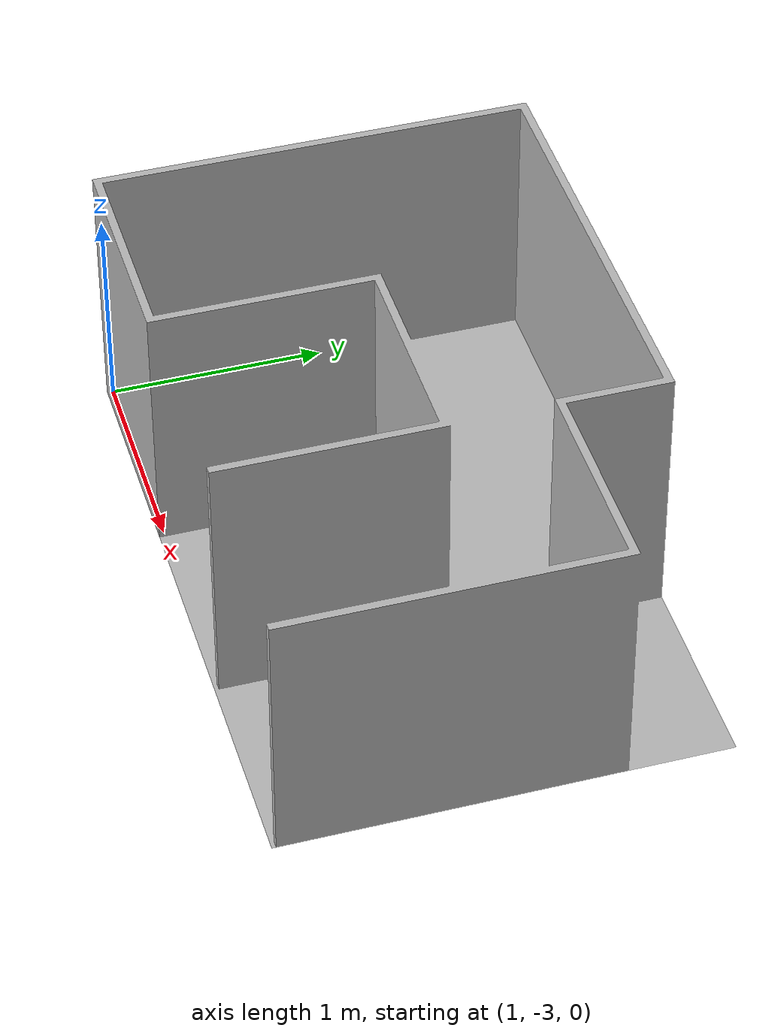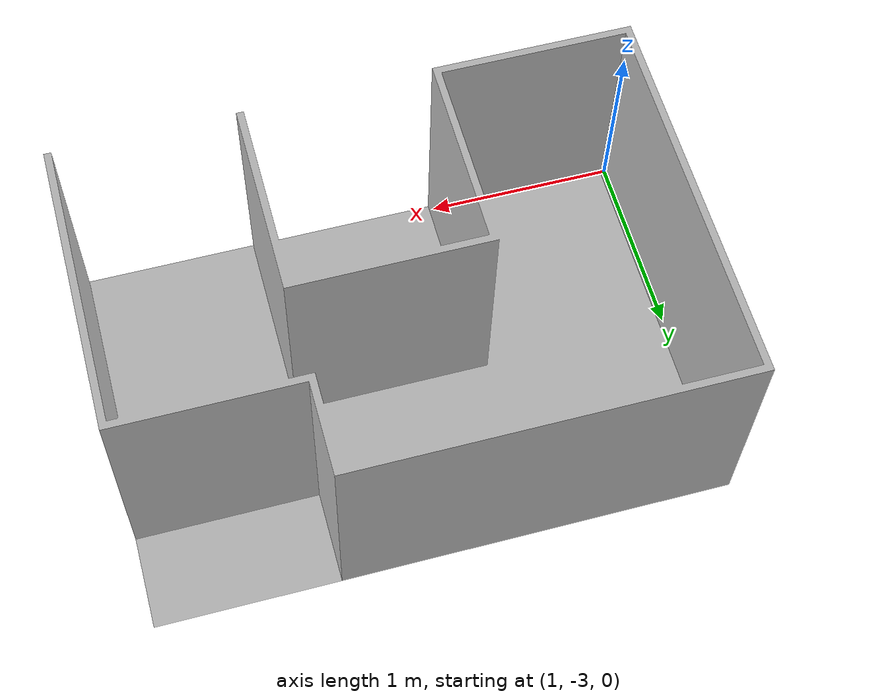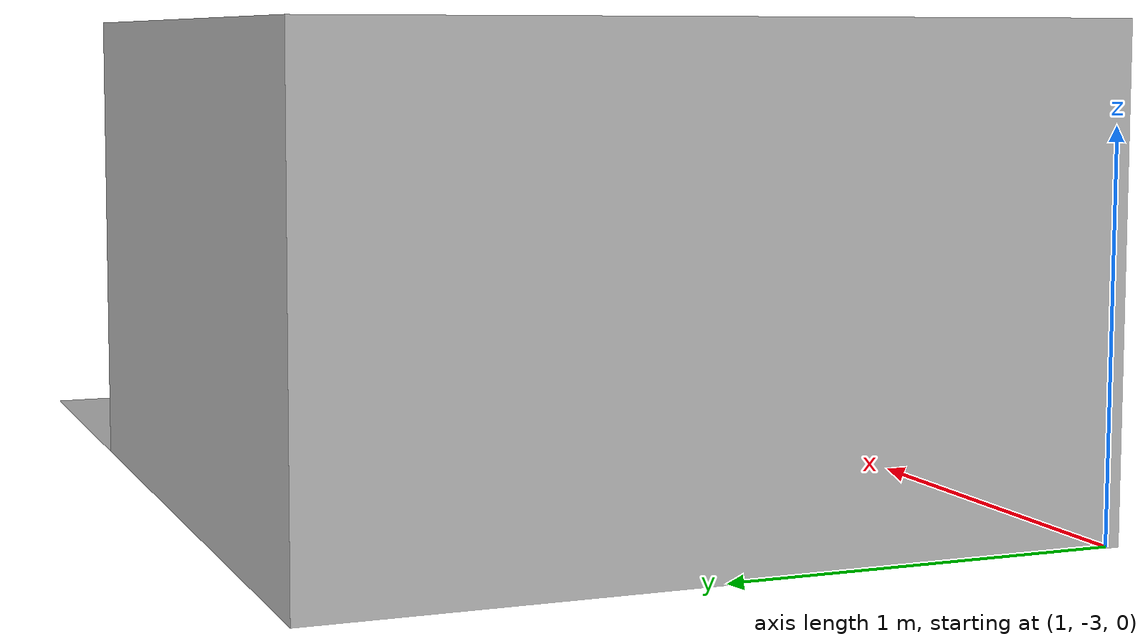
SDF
<?xml version="1.0"?>
<sdf version="1.5">
    <model name="SweetHome3D_test_room_1">
      <pose>0 0 0  1.5707 0 0</pose>
      <static>true</static>
      <link name="body">
        <visual name="visual">
          <geometry>
            <mesh>
		<uri>model://test_room_1/meshes/test_room.dae</uri>
		<scale>0.005 0.005 0.005</scale>
	</mesh>
          </geometry>
        </visual>
	<collision name="collision">
          <geometry>
            <mesh>
		<uri>model://test_room_1/meshes/test_room.dae</uri>
		<scale>0.005 0.005 0.005</scale>
	</mesh>
          </geometry>
        </collision>
      </link>

    </model>
</sdf>
